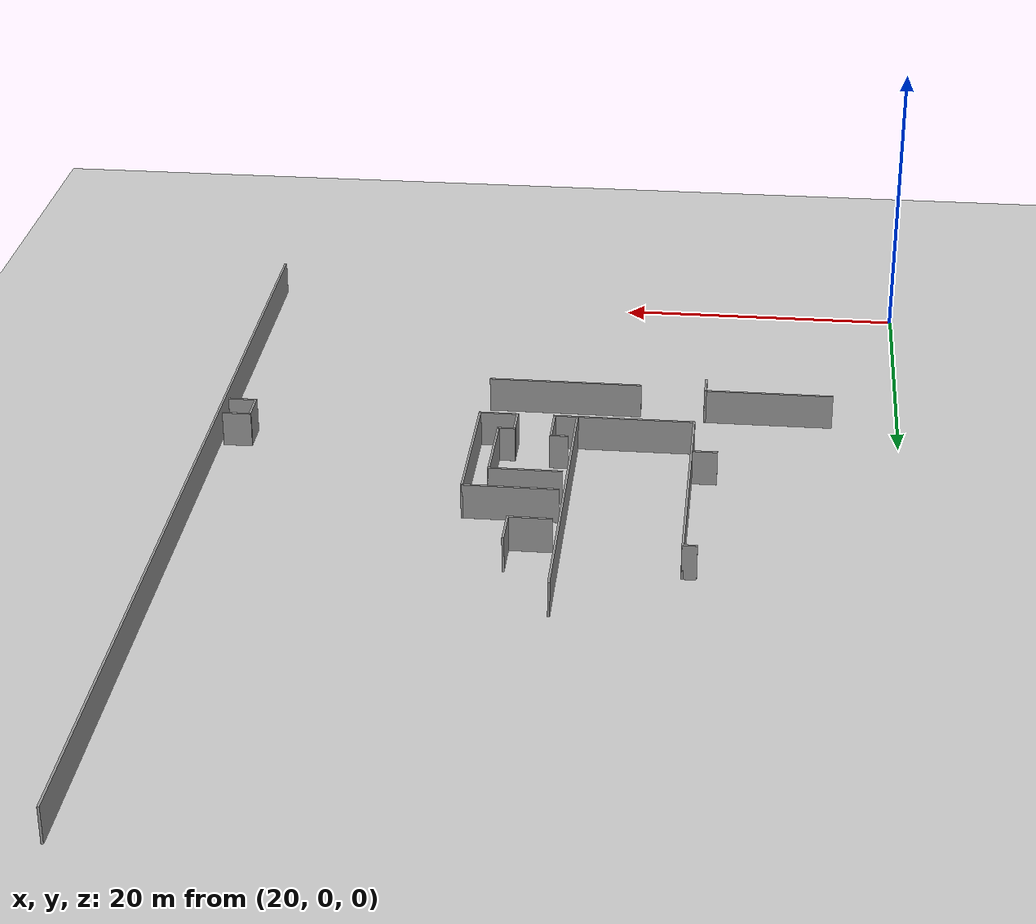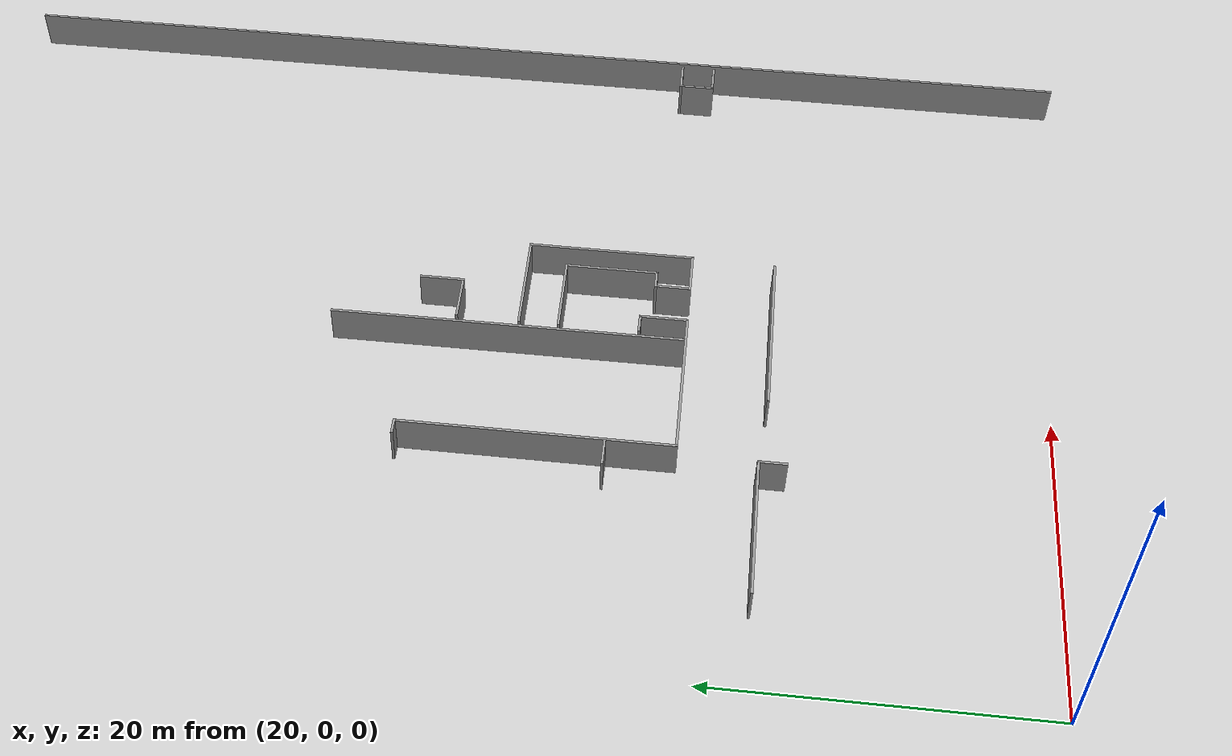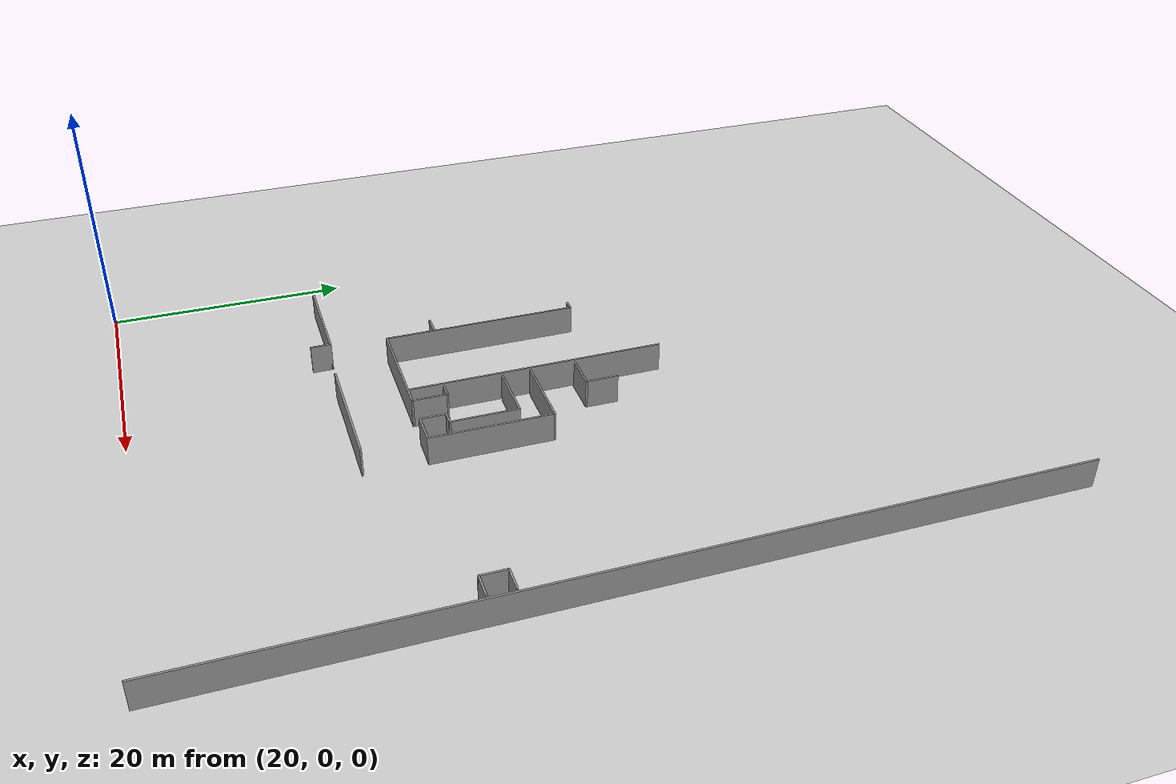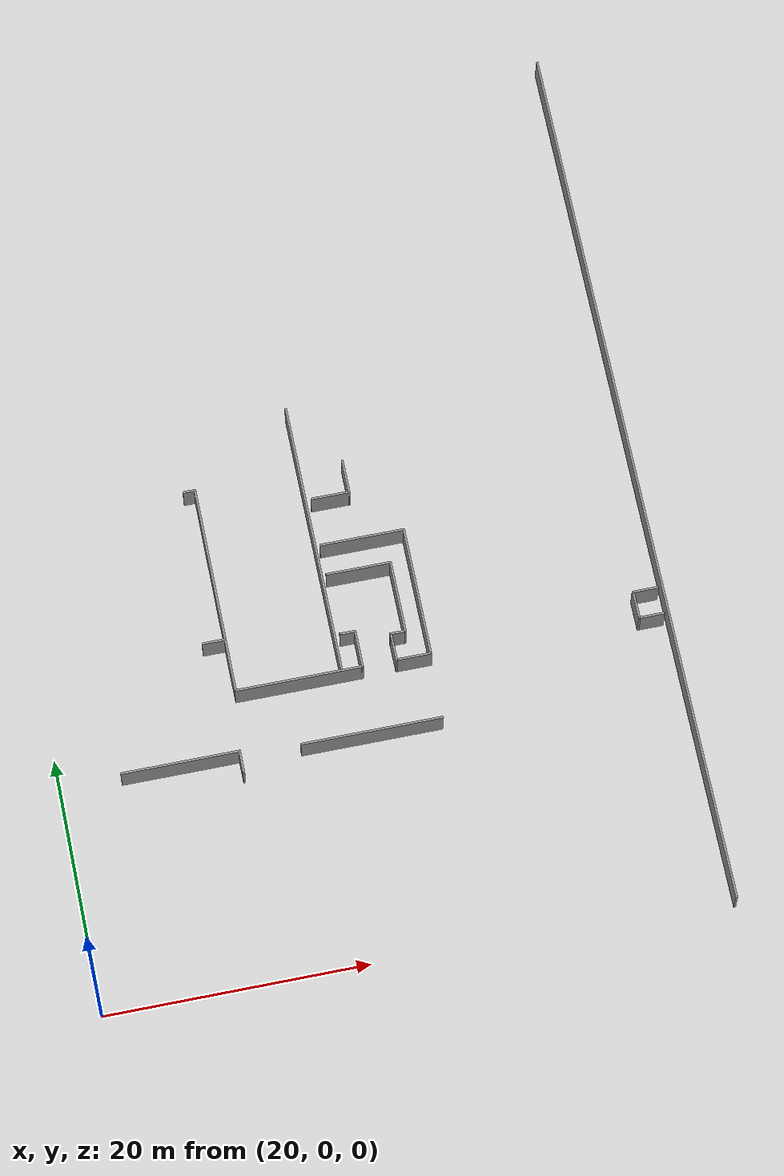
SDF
<sdf version="1.6">
 <world name="default">
  <model name="ground_plane">
   <static>1</static>
   <link name="link">
    <collision name="collision">
     <geometry><plane><normal>0 0 1</normal><size>100 100</size></plane></geometry>
     <surface><friction><ode><mu>100</mu><mu2>50</mu2></ode></friction></surface>
    </collision>
    <visual name="visual">
     <cast_shadows>0</cast_shadows>
     <geometry><plane><normal>0 0 1</normal><size>100 100</size></plane></geometry>
     <material>
      <script><uri>file://media/materials/scripts/gazebo.material</uri><name>Gazebo/Grey</name></script>
     </material>
    </visual>
   </link>
  </model>
  <model name="chengdu_office_0">
   <link name="Wall_1">
    <pose>35.425 0 0 0 -0 1.5708</pose>
    <visual name="Wall_1_Visual">
     <pose>0 0 1.25 0 -0 0</pose>
     <geometry><box><size>69.5 0.15 2.5</size></box></geometry>
     <material>
      <script><uri>file://media/materials/scripts/gazebo.material</uri><name>Gazebo/Grey</name></script>
      <ambient>1 1 1 1</ambient>
      <diffuse>0.7 0.7 0.7 1</diffuse>
      <specular>0.01 0.01 0.01 1</specular>
      <emissive>0 0 0 1</emissive>
     </material>
    </visual>
    <collision name="Wall_1_Collision">
     <pose>0 0 1.25 0 -0 0</pose>
     <geometry><box><size>69.5 0.15 2.5</size></box></geometry>
     <surface>
      <friction>
       <ode><mu>1</mu><mu2>1</mu2><fdir1>0 0 0</fdir1><slip1>0</slip1><slip2>0</slip2></ode>
       <torsional>
        <coefficient>1</coefficient>
        <patch_radius>0</patch_radius>
        <surface_radius>0</surface_radius>
        <use_patch_radius>1</use_patch_radius>
        <ode><slip>0</slip></ode>
       </torsional>
      </friction>
      <bounce><restitution_coefficient>0</restitution_coefficient><threshold>1e+06</threshold></bounce>
      <contact>
       <collide_without_contact>0</collide_without_contact>
       <collide_without_contact_bitmask>1</collide_without_contact_bitmask>
       <collide_bitmask>1</collide_bitmask>
       <ode>
        <soft_cfm>0</soft_cfm>
        <soft_erp>0.2</soft_erp>
        <kp>1e+13</kp>
        <kd>1</kd>
        <max_vel>0.01</max_vel>
        <min_depth>0</min_depth>
       </ode>
       <bullet>
        <split_impulse>1</split_impulse>
        <split_impulse_penetration_threshold>-0.01</split_impulse_penetration_threshold>
        <soft_cfm>0</soft_cfm>
        <soft_erp>0.2</soft_erp>
        <kp>1e+13</kp>
        <kd>1</kd>
       </bullet>
      </contact>
     </surface>
    </collision>
   </link>
   <link name="Wall_100">
    <pose>14.2089 -1.63326 0 0 -0 3.14159</pose>
    <visual name="Wall_100_Visual">
     <pose>0 0 1.25 0 -0 0</pose>
     <geometry><box><size>6.5 0.15 2.5</size></box></geometry>
     <material>
      <script><uri>file://media/materials/scripts/gazebo.material</uri><name>Gazebo/Grey</name></script>
      <ambient>1 1 1 1</ambient>
      <diffuse>0.7 0.7 0.7 1</diffuse>
      <specular>0.01 0.01 0.01 1</specular>
      <emissive>0 0 0 1</emissive>
     </material>
    </visual>
    <collision name="Wall_100_Collision">
     <pose>0 0 1.25 0 -0 0</pose>
     <geometry><box><size>6.5 0.15 2.5</size></box></geometry>
     <surface>
      <friction>
       <ode><mu>1</mu><mu2>1</mu2><fdir1>0 0 0</fdir1><slip1>0</slip1><slip2>0</slip2></ode>
       <torsional>
        <coefficient>1</coefficient>
        <patch_radius>0</patch_radius>
        <surface_radius>0</surface_radius>
        <use_patch_radius>1</use_patch_radius>
        <ode><slip>0</slip></ode>
       </torsional>
      </friction>
      <bounce><restitution_coefficient>0</restitution_coefficient><threshold>1e+06</threshold></bounce>
      <contact>
       <collide_without_contact>0</collide_without_contact>
       <collide_without_contact_bitmask>1</collide_without_contact_bitmask>
       <collide_bitmask>1</collide_bitmask>
       <ode>
        <soft_cfm>0</soft_cfm>
        <soft_erp>0.2</soft_erp>
        <kp>1e+13</kp>
        <kd>1</kd>
        <max_vel>0.01</max_vel>
        <min_depth>0</min_depth>
       </ode>
       <bullet>
        <split_impulse>1</split_impulse>
        <split_impulse_penetration_threshold>-0.01</split_impulse_penetration_threshold>
        <soft_cfm>0</soft_cfm>
        <soft_erp>0.2</soft_erp>
        <kp>1e+13</kp>
        <kd>1</kd>
       </bullet>
      </contact>
     </surface>
    </collision>
   </link>
   <link name="Wall_104">
    <pose>13.9539 3.46674 0 0 0 -1.5708</pose>
    <visual name="Wall_104_Visual">
     <pose>0 0 1.25 0 -0 0</pose>
     <geometry><box><size>2.75 0.15 2.5</size></box></geometry>
     <material>
      <script><uri>file://media/materials/scripts/gazebo.material</uri><name>Gazebo/Grey</name></script>
      <ambient>1 1 1 1</ambient>
      <diffuse>0.7 0.7 0.7 1</diffuse>
      <specular>0.01 0.01 0.01 1</specular>
      <emissive>0 0 0 1</emissive>
     </material>
    </visual>
    <collision name="Wall_104_Collision">
     <pose>0 0 1.25 0 -0 0</pose>
     <geometry><box><size>2.75 0.15 2.5</size></box></geometry>
     <surface>
      <friction>
       <ode><mu>1</mu><mu2>1</mu2><fdir1>0 0 0</fdir1><slip1>0</slip1><slip2>0</slip2></ode>
       <torsional>
        <coefficient>1</coefficient>
        <patch_radius>0</patch_radius>
        <surface_radius>0</surface_radius>
        <use_patch_radius>1</use_patch_radius>
        <ode><slip>0</slip></ode>
       </torsional>
      </friction>
      <bounce><restitution_coefficient>0</restitution_coefficient><threshold>1e+06</threshold></bounce>
      <contact>
       <collide_without_contact>0</collide_without_contact>
       <collide_without_contact_bitmask>1</collide_without_contact_bitmask>
       <collide_bitmask>1</collide_bitmask>
       <ode>
        <soft_cfm>0</soft_cfm>
        <soft_erp>0.2</soft_erp>
        <kp>1e+13</kp>
        <kd>1</kd>
        <max_vel>0.01</max_vel>
        <min_depth>0</min_depth>
       </ode>
       <bullet>
        <split_impulse>1</split_impulse>
        <split_impulse_penetration_threshold>-0.01</split_impulse_penetration_threshold>
        <soft_cfm>0</soft_cfm>
        <soft_erp>0.2</soft_erp>
        <kp>1e+13</kp>
        <kd>1</kd>
       </bullet>
      </contact>
     </surface>
    </collision>
   </link>
   <link name="Wall_105">
    <pose>12.5289 2.16674 0 0 -0 3.14159</pose>
    <visual name="Wall_105_Visual">
     <pose>0 0 1.25 0 -0 0</pose>
     <geometry><box><size>3 0.15 2.5</size></box></geometry>
     <material>
      <script><uri>file://media/materials/scripts/gazebo.material</uri><name>Gazebo/Grey</name></script>
      <ambient>1 1 1 1</ambient>
      <diffuse>0.7 0.7 0.7 1</diffuse>
      <specular>0.01 0.01 0.01 1</specular>
      <emissive>0 0 0 1</emissive>
     </material>
    </visual>
    <collision name="Wall_105_Collision">
     <pose>0 0 1.25 0 -0 0</pose>
     <geometry><box><size>3 0.15 2.5</size></box></geometry>
     <surface>
      <friction>
       <ode><mu>1</mu><mu2>1</mu2><fdir1>0 0 0</fdir1><slip1>0</slip1><slip2>0</slip2></ode>
       <torsional>
        <coefficient>1</coefficient>
        <patch_radius>0</patch_radius>
        <surface_radius>0</surface_radius>
        <use_patch_radius>1</use_patch_radius>
        <ode><slip>0</slip></ode>
       </torsional>
      </friction>
      <bounce><restitution_coefficient>0</restitution_coefficient><threshold>1e+06</threshold></bounce>
      <contact>
       <collide_without_contact>0</collide_without_contact>
       <collide_without_contact_bitmask>1</collide_without_contact_bitmask>
       <collide_bitmask>1</collide_bitmask>
       <ode>
        <soft_cfm>0</soft_cfm>
        <soft_erp>0.2</soft_erp>
        <kp>1e+13</kp>
        <kd>1</kd>
        <max_vel>0.01</max_vel>
        <min_depth>0</min_depth>
       </ode>
       <bullet>
        <split_impulse>1</split_impulse>
        <split_impulse_penetration_threshold>-0.01</split_impulse_penetration_threshold>
        <soft_cfm>0</soft_cfm>
        <soft_erp>0.2</soft_erp>
        <kp>1e+13</kp>
        <kd>1</kd>
       </bullet>
      </contact>
     </surface>
    </collision>
   </link>
   <link name="Wall_127">
    <pose>-2.42216 -16.465 0 0 -0 0</pose>
    <visual name="Wall_127_Visual">
     <pose>0 0 1.25 0 -0 0</pose>
     <geometry><box><size>9 0.15 2.5</size></box></geometry>
     <material>
      <script><uri>file://media/materials/scripts/gazebo.material</uri><name>Gazebo/Grey</name></script>
      <ambient>1 1 1 1</ambient>
      <diffuse>0.7 0.7 0.7 1</diffuse>
      <specular>0.01 0.01 0.01 1</specular>
      <emissive>0 0 0 1</emissive>
     </material>
    </visual>
    <collision name="Wall_127_Collision">
     <pose>0 0 1.25 0 -0 0</pose>
     <geometry><box><size>9 0.15 2.5</size></box></geometry>
     <surface>
      <friction>
       <ode><mu>1</mu><mu2>1</mu2><fdir1>0 0 0</fdir1><slip1>0</slip1><slip2>0</slip2></ode>
       <torsional>
        <coefficient>1</coefficient>
        <patch_radius>0</patch_radius>
        <surface_radius>0</surface_radius>
        <use_patch_radius>1</use_patch_radius>
        <ode><slip>0</slip></ode>
       </torsional>
      </friction>
      <bounce><restitution_coefficient>0</restitution_coefficient><threshold>1e+06</threshold></bounce>
      <contact>
       <collide_without_contact>0</collide_without_contact>
       <collide_without_contact_bitmask>1</collide_without_contact_bitmask>
       <collide_bitmask>1</collide_bitmask>
       <ode>
        <soft_cfm>0</soft_cfm>
        <soft_erp>0.2</soft_erp>
        <kp>1e+13</kp>
        <kd>1</kd>
        <max_vel>0.01</max_vel>
        <min_depth>0</min_depth>
       </ode>
       <bullet>
        <split_impulse>1</split_impulse>
        <split_impulse_penetration_threshold>-0.01</split_impulse_penetration_threshold>
        <soft_cfm>0</soft_cfm>
        <soft_erp>0.2</soft_erp>
        <kp>1e+13</kp>
        <kd>1</kd>
       </bullet>
      </contact>
     </surface>
    </collision>
   </link>
   <link name="Wall_128">
    <pose>2.00284 -17.265 0 0 0 -1.5708</pose>
    <visual name="Wall_128_Visual">
     <pose>0 0 1.25 0 -0 0</pose>
     <geometry><box><size>1.75 0.15 2.5</size></box></geometry>
     <material>
      <script><uri>file://media/materials/scripts/gazebo.material</uri><name>Gazebo/Grey</name></script>
      <ambient>1 1 1 1</ambient>
      <diffuse>0.7 0.7 0.7 1</diffuse>
      <specular>0.01 0.01 0.01 1</specular>
      <emissive>0 0 0 1</emissive>
     </material>
    </visual>
    <collision name="Wall_128_Collision">
     <pose>0 0 1.25 0 -0 0</pose>
     <geometry><box><size>1.75 0.15 2.5</size></box></geometry>
     <surface>
      <friction>
       <ode><mu>1</mu><mu2>1</mu2><fdir1>0 0 0</fdir1><slip1>0</slip1><slip2>0</slip2></ode>
       <torsional>
        <coefficient>1</coefficient>
        <patch_radius>0</patch_radius>
        <surface_radius>0</surface_radius>
        <use_patch_radius>1</use_patch_radius>
        <ode><slip>0</slip></ode>
       </torsional>
      </friction>
      <bounce><restitution_coefficient>0</restitution_coefficient><threshold>1e+06</threshold></bounce>
      <contact>
       <collide_without_contact>0</collide_without_contact>
       <collide_without_contact_bitmask>1</collide_without_contact_bitmask>
       <collide_bitmask>1</collide_bitmask>
       <ode>
        <soft_cfm>0</soft_cfm>
        <soft_erp>0.2</soft_erp>
        <kp>1e+13</kp>
        <kd>1</kd>
        <max_vel>0.01</max_vel>
        <min_depth>0</min_depth>
       </ode>
       <bullet>
        <split_impulse>1</split_impulse>
        <split_impulse_penetration_threshold>-0.01</split_impulse_penetration_threshold>
        <soft_cfm>0</soft_cfm>
        <soft_erp>0.2</soft_erp>
        <kp>1e+13</kp>
        <kd>1</kd>
       </bullet>
      </contact>
     </surface>
    </collision>
   </link>
   <link name="Wall_136">
    <pose>11.902 -16.8434 0 0 -0 0</pose>
    <visual name="Wall_136_Visual">
     <pose>0 0 1.25 0 -0 0</pose>
     <geometry><box><size>10.75 0.15 2.5</size></box></geometry>
     <material>
      <script><uri>file://media/materials/scripts/gazebo.material</uri><name>Gazebo/Grey</name></script>
      <ambient>1 1 1 1</ambient>
      <diffuse>0.7 0.7 0.7 1</diffuse>
      <specular>0.01 0.01 0.01 1</specular>
      <emissive>0 0 0 1</emissive>
     </material>
    </visual>
    <collision name="Wall_136_Collision">
     <pose>0 0 1.25 0 -0 0</pose>
     <geometry><box><size>10.75 0.15 2.5</size></box></geometry>
     <surface>
      <friction>
       <ode><mu>1</mu><mu2>1</mu2><fdir1>0 0 0</fdir1><slip1>0</slip1><slip2>0</slip2></ode>
       <torsional>
        <coefficient>1</coefficient>
        <patch_radius>0</patch_radius>
        <surface_radius>0</surface_radius>
        <use_patch_radius>1</use_patch_radius>
        <ode><slip>0</slip></ode>
       </torsional>
      </friction>
      <bounce><restitution_coefficient>0</restitution_coefficient><threshold>1e+06</threshold></bounce>
      <contact>
       <collide_without_contact>0</collide_without_contact>
       <collide_without_contact_bitmask>1</collide_without_contact_bitmask>
       <collide_bitmask>1</collide_bitmask>
       <ode>
        <soft_cfm>0</soft_cfm>
        <soft_erp>0.2</soft_erp>
        <kp>1e+13</kp>
        <kd>1</kd>
        <max_vel>0.01</max_vel>
        <min_depth>0</min_depth>
       </ode>
       <bullet>
        <split_impulse>1</split_impulse>
        <split_impulse_penetration_threshold>-0.01</split_impulse_penetration_threshold>
        <soft_cfm>0</soft_cfm>
        <soft_erp>0.2</soft_erp>
        <kp>1e+13</kp>
        <kd>1</kd>
       </bullet>
      </contact>
     </surface>
    </collision>
   </link>
   <link name="Wall_138">
    <pose>34.1169 -9.96068 0 0 -0 3.14159</pose>
    <visual name="Wall_138_Visual">
     <pose>0 0 1.25 0 -0 0</pose>
     <geometry><box><size>2 0.15 2.5</size></box></geometry>
     <material>
      <script><uri>file://media/materials/scripts/gazebo.material</uri><name>Gazebo/Grey</name></script>
      <ambient>1 1 1 1</ambient>
      <diffuse>0.7 0.7 0.7 1</diffuse>
      <specular>0.01 0.01 0.01 1</specular>
      <emissive>0 0 0 1</emissive>
     </material>
    </visual>
    <collision name="Wall_138_Collision">
     <pose>0 0 1.25 0 -0 0</pose>
     <geometry><box><size>2 0.15 2.5</size></box></geometry>
     <surface>
      <friction>
       <ode><mu>1</mu><mu2>1</mu2><fdir1>0 0 0</fdir1><slip1>0</slip1><slip2>0</slip2></ode>
       <torsional>
        <coefficient>1</coefficient>
        <patch_radius>0</patch_radius>
        <surface_radius>0</surface_radius>
        <use_patch_radius>1</use_patch_radius>
        <ode><slip>0</slip></ode>
       </torsional>
      </friction>
      <bounce><restitution_coefficient>0</restitution_coefficient><threshold>1e+06</threshold></bounce>
      <contact>
       <collide_without_contact>0</collide_without_contact>
       <collide_without_contact_bitmask>1</collide_without_contact_bitmask>
       <collide_bitmask>1</collide_bitmask>
       <ode>
        <soft_cfm>0</soft_cfm>
        <soft_erp>0.2</soft_erp>
        <kp>1e+13</kp>
        <kd>1</kd>
        <max_vel>0.01</max_vel>
        <min_depth>0</min_depth>
       </ode>
       <bullet>
        <split_impulse>1</split_impulse>
        <split_impulse_penetration_threshold>-0.01</split_impulse_penetration_threshold>
        <soft_cfm>0</soft_cfm>
        <soft_erp>0.2</soft_erp>
        <kp>1e+13</kp>
        <kd>1</kd>
       </bullet>
      </contact>
     </surface>
    </collision>
   </link>
   <link name="Wall_139">
    <pose>33.1919 -11.0107 0 0 0 -1.5708</pose>
    <visual name="Wall_139_Visual">
     <pose>0 0 1.25 0 -0 0</pose>
     <geometry><box><size>2.25 0.15 2.5</size></box></geometry>
     <material>
      <script><uri>file://media/materials/scripts/gazebo.material</uri><name>Gazebo/Grey</name></script>
      <ambient>1 1 1 1</ambient>
      <diffuse>0.7 0.7 0.7 1</diffuse>
      <specular>0.01 0.01 0.01 1</specular>
      <emissive>0 0 0 1</emissive>
     </material>
    </visual>
    <collision name="Wall_139_Collision">
     <pose>0 0 1.25 0 -0 0</pose>
     <geometry><box><size>2.25 0.15 2.5</size></box></geometry>
     <surface>
      <friction>
       <ode><mu>1</mu><mu2>1</mu2><fdir1>0 0 0</fdir1><slip1>0</slip1><slip2>0</slip2></ode>
       <torsional>
        <coefficient>1</coefficient>
        <patch_radius>0</patch_radius>
        <surface_radius>0</surface_radius>
        <use_patch_radius>1</use_patch_radius>
        <ode><slip>0</slip></ode>
       </torsional>
      </friction>
      <bounce><restitution_coefficient>0</restitution_coefficient><threshold>1e+06</threshold></bounce>
      <contact>
       <collide_without_contact>0</collide_without_contact>
       <collide_without_contact_bitmask>1</collide_without_contact_bitmask>
       <collide_bitmask>1</collide_bitmask>
       <ode>
        <soft_cfm>0</soft_cfm>
        <soft_erp>0.2</soft_erp>
        <kp>1e+13</kp>
        <kd>1</kd>
        <max_vel>0.01</max_vel>
        <min_depth>0</min_depth>
       </ode>
       <bullet>
        <split_impulse>1</split_impulse>
        <split_impulse_penetration_threshold>-0.01</split_impulse_penetration_threshold>
        <soft_cfm>0</soft_cfm>
        <soft_erp>0.2</soft_erp>
        <kp>1e+13</kp>
        <kd>1</kd>
       </bullet>
      </contact>
     </surface>
    </collision>
   </link>
   <link name="Wall_140">
    <pose>34.1169 -12.0607 0 0 -0 0</pose>
    <visual name="Wall_140_Visual">
     <pose>0 0 1.25 0 -0 0</pose>
     <geometry><box><size>2 0.15 2.5</size></box></geometry>
     <material>
      <script><uri>file://media/materials/scripts/gazebo.material</uri><name>Gazebo/Grey</name></script>
      <ambient>1 1 1 1</ambient>
      <diffuse>0.7 0.7 0.7 1</diffuse>
      <specular>0.01 0.01 0.01 1</specular>
      <emissive>0 0 0 1</emissive>
     </material>
    </visual>
    <collision name="Wall_140_Collision">
     <pose>0 0 1.25 0 -0 0</pose>
     <geometry><box><size>2 0.15 2.5</size></box></geometry>
     <surface>
      <friction>
       <ode><mu>1</mu><mu2>1</mu2><fdir1>0 0 0</fdir1><slip1>0</slip1><slip2>0</slip2></ode>
       <torsional>
        <coefficient>1</coefficient>
        <patch_radius>0</patch_radius>
        <surface_radius>0</surface_radius>
        <use_patch_radius>1</use_patch_radius>
        <ode><slip>0</slip></ode>
       </torsional>
      </friction>
      <bounce><restitution_coefficient>0</restitution_coefficient><threshold>1e+06</threshold></bounce>
      <contact>
       <collide_without_contact>0</collide_without_contact>
       <collide_without_contact_bitmask>1</collide_without_contact_bitmask>
       <collide_bitmask>1</collide_bitmask>
       <ode>
        <soft_cfm>0</soft_cfm>
        <soft_erp>0.2</soft_erp>
        <kp>1e+13</kp>
        <kd>1</kd>
        <max_vel>0.01</max_vel>
        <min_depth>0</min_depth>
       </ode>
       <bullet>
        <split_impulse>1</split_impulse>
        <split_impulse_penetration_threshold>-0.01</split_impulse_penetration_threshold>
        <soft_cfm>0</soft_cfm>
        <soft_erp>0.2</soft_erp>
        <kp>1e+13</kp>
        <kd>1</kd>
       </bullet>
      </contact>
     </surface>
    </collision>
   </link>
   <link name="Wall_83">
    <pose>10.6081 -0.948284 0 0 0 -1.56796</pose>
    <visual name="Wall_83_Visual">
     <pose>0 0 1.25 0 -0 0</pose>
     <geometry><box><size>21.5 0.15 2.5</size></box></geometry>
     <material>
      <script><uri>file://media/materials/scripts/gazebo.material</uri><name>Gazebo/Grey</name></script>
      <ambient>1 1 1 1</ambient>
      <diffuse>0.7 0.7 0.7 1</diffuse>
      <specular>0.01 0.01 0.01 1</specular>
      <emissive>0 0 0 1</emissive>
     </material>
    </visual>
    <collision name="Wall_83_Collision">
     <pose>0 0 1.25 0 -0 0</pose>
     <geometry><box><size>21.5 0.15 2.5</size></box></geometry>
     <surface>
      <friction>
       <ode><mu>1</mu><mu2>1</mu2><fdir1>0 0 0</fdir1><slip1>0</slip1><slip2>0</slip2></ode>
       <torsional>
        <coefficient>1</coefficient>
        <patch_radius>0</patch_radius>
        <surface_radius>0</surface_radius>
        <use_patch_radius>1</use_patch_radius>
        <ode><slip>0</slip></ode>
       </torsional>
      </friction>
      <bounce><restitution_coefficient>0</restitution_coefficient><threshold>1e+06</threshold></bounce>
      <contact>
       <collide_without_contact>0</collide_without_contact>
       <collide_without_contact_bitmask>1</collide_without_contact_bitmask>
       <collide_bitmask>1</collide_bitmask>
       <ode>
        <soft_cfm>0</soft_cfm>
        <soft_erp>0.2</soft_erp>
        <kp>1e+13</kp>
        <kd>1</kd>
        <max_vel>0.01</max_vel>
        <min_depth>0</min_depth>
       </ode>
       <bullet>
        <split_impulse>1</split_impulse>
        <split_impulse_penetration_threshold>-0.01</split_impulse_penetration_threshold>
        <soft_cfm>0</soft_cfm>
        <soft_erp>0.2</soft_erp>
        <kp>1e+13</kp>
        <kd>1</kd>
       </bullet>
      </contact>
     </surface>
    </collision>
   </link>
   <link name="Wall_86">
    <pose>2.17893 4.59674 0 0 -0 0</pose>
    <visual name="Wall_86_Visual">
     <pose>0 0 1.25 0 -0 0</pose>
     <geometry><box><size>1 0.15 2.5</size></box></geometry>
     <material>
      <script><uri>file://media/materials/scripts/gazebo.material</uri><name>Gazebo/Grey</name></script>
      <ambient>1 1 1 1</ambient>
      <diffuse>0.7 0.7 0.7 1</diffuse>
      <specular>0.01 0.01 0.01 1</specular>
      <emissive>0 0 0 1</emissive>
     </material>
    </visual>
    <collision name="Wall_86_Collision">
     <pose>0 0 1.25 0 -0 0</pose>
     <geometry><box><size>1 0.15 2.5</size></box></geometry>
     <surface>
      <friction>
       <ode><mu>1</mu><mu2>1</mu2><fdir1>0 0 0</fdir1><slip1>0</slip1><slip2>0</slip2></ode>
       <torsional>
        <coefficient>1</coefficient>
        <patch_radius>0</patch_radius>
        <surface_radius>0</surface_radius>
        <use_patch_radius>1</use_patch_radius>
        <ode><slip>0</slip></ode>
       </torsional>
      </friction>
      <bounce><restitution_coefficient>0</restitution_coefficient><threshold>1e+06</threshold></bounce>
      <contact>
       <collide_without_contact>0</collide_without_contact>
       <collide_without_contact_bitmask>1</collide_without_contact_bitmask>
       <collide_bitmask>1</collide_bitmask>
       <ode>
        <soft_cfm>0</soft_cfm>
        <soft_erp>0.2</soft_erp>
        <kp>1e+13</kp>
        <kd>1</kd>
        <max_vel>0.01</max_vel>
        <min_depth>0</min_depth>
       </ode>
       <bullet>
        <split_impulse>1</split_impulse>
        <split_impulse_penetration_threshold>-0.01</split_impulse_penetration_threshold>
        <soft_cfm>0</soft_cfm>
        <soft_erp>0.2</soft_erp>
        <kp>1e+13</kp>
        <kd>1</kd>
       </bullet>
      </contact>
     </surface>
    </collision>
   </link>
   <link name="Wall_87">
    <pose>2.60393 -3.57826 0 0 0 -1.5708</pose>
    <visual name="Wall_87_Visual">
     <pose>0 0 1.25 0 -0 0</pose>
     <geometry><box><size>16.5 0.15 2.5</size></box></geometry>
     <material>
      <script><uri>file://media/materials/scripts/gazebo.material</uri><name>Gazebo/Grey</name></script>
      <ambient>1 1 1 1</ambient>
      <diffuse>0.7 0.7 0.7 1</diffuse>
      <specular>0.01 0.01 0.01 1</specular>
      <emissive>0 0 0 1</emissive>
     </material>
    </visual>
    <collision name="Wall_87_Collision">
     <pose>0 0 1.25 0 -0 0</pose>
     <geometry><box><size>16.5 0.15 2.5</size></box></geometry>
     <surface>
      <friction>
       <ode><mu>1</mu><mu2>1</mu2><fdir1>0 0 0</fdir1><slip1>0</slip1><slip2>0</slip2></ode>
       <torsional>
        <coefficient>1</coefficient>
        <patch_radius>0</patch_radius>
        <surface_radius>0</surface_radius>
        <use_patch_radius>1</use_patch_radius>
        <ode><slip>0</slip></ode>
       </torsional>
      </friction>
      <bounce><restitution_coefficient>0</restitution_coefficient><threshold>1e+06</threshold></bounce>
      <contact>
       <collide_without_contact>0</collide_without_contact>
       <collide_without_contact_bitmask>1</collide_without_contact_bitmask>
       <collide_bitmask>1</collide_bitmask>
       <ode>
        <soft_cfm>0</soft_cfm>
        <soft_erp>0.2</soft_erp>
        <kp>1e+13</kp>
        <kd>1</kd>
        <max_vel>0.01</max_vel>
        <min_depth>0</min_depth>
       </ode>
       <bullet>
        <split_impulse>1</split_impulse>
        <split_impulse_penetration_threshold>-0.01</split_impulse_penetration_threshold>
        <soft_cfm>0</soft_cfm>
        <soft_erp>0.2</soft_erp>
        <kp>1e+13</kp>
        <kd>1</kd>
       </bullet>
      </contact>
     </surface>
    </collision>
   </link>
   <link name="Wall_88">
    <pose>7.40393 -11.7533 0 0 -0 0</pose>
    <visual name="Wall_88_Visual">
     <pose>0 0 1.25 0 -0 0</pose>
     <geometry><box><size>9.75 0.15 2.5</size></box></geometry>
     <material>
      <script><uri>file://media/materials/scripts/gazebo.material</uri><name>Gazebo/Grey</name></script>
      <ambient>1 1 1 1</ambient>
      <diffuse>0.7 0.7 0.7 1</diffuse>
      <specular>0.01 0.01 0.01 1</specular>
      <emissive>0 0 0 1</emissive>
     </material>
    </visual>
    <collision name="Wall_88_Collision">
     <pose>0 0 1.25 0 -0 0</pose>
     <geometry><box><size>9.75 0.15 2.5</size></box></geometry>
     <surface>
      <friction>
       <ode><mu>1</mu><mu2>1</mu2><fdir1>0 0 0</fdir1><slip1>0</slip1><slip2>0</slip2></ode>
       <torsional>
        <coefficient>1</coefficient>
        <patch_radius>0</patch_radius>
        <surface_radius>0</surface_radius>
        <use_patch_radius>1</use_patch_radius>
        <ode><slip>0</slip></ode>
       </torsional>
      </friction>
      <bounce><restitution_coefficient>0</restitution_coefficient><threshold>1e+06</threshold></bounce>
      <contact>
       <collide_without_contact>0</collide_without_contact>
       <collide_without_contact_bitmask>1</collide_without_contact_bitmask>
       <collide_bitmask>1</collide_bitmask>
       <ode>
        <soft_cfm>0</soft_cfm>
        <soft_erp>0.2</soft_erp>
        <kp>1e+13</kp>
        <kd>1</kd>
        <max_vel>0.01</max_vel>
        <min_depth>0</min_depth>
       </ode>
       <bullet>
        <split_impulse>1</split_impulse>
        <split_impulse_penetration_threshold>-0.01</split_impulse_penetration_threshold>
        <soft_cfm>0</soft_cfm>
        <soft_erp>0.2</soft_erp>
        <kp>1e+13</kp>
        <kd>1</kd>
       </bullet>
      </contact>
     </surface>
    </collision>
   </link>
   <link name="Wall_89">
    <pose>12.2039 -10.3283 0 0 -0 1.5708</pose>
    <visual name="Wall_89_Visual">
     <pose>0 0 1.25 0 -0 0</pose>
     <geometry><box><size>3 0.15 2.5</size></box></geometry>
     <material>
      <script><uri>file://media/materials/scripts/gazebo.material</uri><name>Gazebo/Grey</name></script>
      <ambient>1 1 1 1</ambient>
      <diffuse>0.7 0.7 0.7 1</diffuse>
      <specular>0.01 0.01 0.01 1</specular>
      <emissive>0 0 0 1</emissive>
     </material>
    </visual>
    <collision name="Wall_89_Collision">
     <pose>0 0 1.25 0 -0 0</pose>
     <geometry><box><size>3 0.15 2.5</size></box></geometry>
     <surface>
      <friction>
       <ode><mu>1</mu><mu2>1</mu2><fdir1>0 0 0</fdir1><slip1>0</slip1><slip2>0</slip2></ode>
       <torsional>
        <coefficient>1</coefficient>
        <patch_radius>0</patch_radius>
        <surface_radius>0</surface_radius>
        <use_patch_radius>1</use_patch_radius>
        <ode><slip>0</slip></ode>
       </torsional>
      </friction>
      <bounce><restitution_coefficient>0</restitution_coefficient><threshold>1e+06</threshold></bounce>
      <contact>
       <collide_without_contact>0</collide_without_contact>
       <collide_without_contact_bitmask>1</collide_without_contact_bitmask>
       <collide_bitmask>1</collide_bitmask>
       <ode>
        <soft_cfm>0</soft_cfm>
        <soft_erp>0.2</soft_erp>
        <kp>1e+13</kp>
        <kd>1</kd>
        <max_vel>0.01</max_vel>
        <min_depth>0</min_depth>
       </ode>
       <bullet>
        <split_impulse>1</split_impulse>
        <split_impulse_penetration_threshold>-0.01</split_impulse_penetration_threshold>
        <soft_cfm>0</soft_cfm>
        <soft_erp>0.2</soft_erp>
        <kp>1e+13</kp>
        <kd>1</kd>
       </bullet>
      </contact>
     </surface>
    </collision>
   </link>
   <link name="Wall_90">
    <pose>11.6539 -8.90326 0 0 -0 3.14159</pose>
    <visual name="Wall_90_Visual">
     <pose>0 0 1.25 0 -0 0</pose>
     <geometry><box><size>1.25 0.15 2.5</size></box></geometry>
     <material>
      <script><uri>file://media/materials/scripts/gazebo.material</uri><name>Gazebo/Grey</name></script>
      <ambient>1 1 1 1</ambient>
      <diffuse>0.7 0.7 0.7 1</diffuse>
      <specular>0.01 0.01 0.01 1</specular>
      <emissive>0 0 0 1</emissive>
     </material>
    </visual>
    <collision name="Wall_90_Collision">
     <pose>0 0 1.25 0 -0 0</pose>
     <geometry><box><size>1.25 0.15 2.5</size></box></geometry>
     <surface>
      <friction>
       <ode><mu>1</mu><mu2>1</mu2><fdir1>0 0 0</fdir1><slip1>0</slip1><slip2>0</slip2></ode>
       <torsional>
        <coefficient>1</coefficient>
        <patch_radius>0</patch_radius>
        <surface_radius>0</surface_radius>
        <use_patch_radius>1</use_patch_radius>
        <ode><slip>0</slip></ode>
       </torsional>
      </friction>
      <bounce><restitution_coefficient>0</restitution_coefficient><threshold>1e+06</threshold></bounce>
      <contact>
       <collide_without_contact>0</collide_without_contact>
       <collide_without_contact_bitmask>1</collide_without_contact_bitmask>
       <collide_bitmask>1</collide_bitmask>
       <ode>
        <soft_cfm>0</soft_cfm>
        <soft_erp>0.2</soft_erp>
        <kp>1e+13</kp>
        <kd>1</kd>
        <max_vel>0.01</max_vel>
        <min_depth>0</min_depth>
       </ode>
       <bullet>
        <split_impulse>1</split_impulse>
        <split_impulse_penetration_threshold>-0.01</split_impulse_penetration_threshold>
        <soft_cfm>0</soft_cfm>
        <soft_erp>0.2</soft_erp>
        <kp>1e+13</kp>
        <kd>1</kd>
       </bullet>
      </contact>
     </surface>
    </collision>
   </link>
   <link name="Wall_92">
    <pose>1.71393 -7.63326 0 0 -0 0</pose>
    <visual name="Wall_92_Visual">
     <pose>0 0 1.25 0 -0 0</pose>
     <geometry><box><size>1.75 0.15 2.5</size></box></geometry>
     <material>
      <script><uri>file://media/materials/scripts/gazebo.material</uri><name>Gazebo/Grey</name></script>
      <ambient>1 1 1 1</ambient>
      <diffuse>0.7 0.7 0.7 1</diffuse>
      <specular>0.01 0.01 0.01 1</specular>
      <emissive>0 0 0 1</emissive>
     </material>
    </visual>
    <collision name="Wall_92_Collision">
     <pose>0 0 1.25 0 -0 0</pose>
     <geometry><box><size>1.75 0.15 2.5</size></box></geometry>
     <surface>
      <friction>
       <ode><mu>1</mu><mu2>1</mu2><fdir1>0 0 0</fdir1><slip1>0</slip1><slip2>0</slip2></ode>
       <torsional>
        <coefficient>1</coefficient>
        <patch_radius>0</patch_radius>
        <surface_radius>0</surface_radius>
        <use_patch_radius>1</use_patch_radius>
        <ode><slip>0</slip></ode>
       </torsional>
      </friction>
      <bounce><restitution_coefficient>0</restitution_coefficient><threshold>1e+06</threshold></bounce>
      <contact>
       <collide_without_contact>0</collide_without_contact>
       <collide_without_contact_bitmask>1</collide_without_contact_bitmask>
       <collide_bitmask>1</collide_bitmask>
       <ode>
        <soft_cfm>0</soft_cfm>
        <soft_erp>0.2</soft_erp>
        <kp>1e+13</kp>
        <kd>1</kd>
        <max_vel>0.01</max_vel>
        <min_depth>0</min_depth>
       </ode>
       <bullet>
        <split_impulse>1</split_impulse>
        <split_impulse_penetration_threshold>-0.01</split_impulse_penetration_threshold>
        <soft_cfm>0</soft_cfm>
        <soft_erp>0.2</soft_erp>
        <kp>1e+13</kp>
        <kd>1</kd>
       </bullet>
      </contact>
     </surface>
    </collision>
   </link>
   <link name="Wall_94">
    <pose>13.4589 -4.03326 0 0 -0 0</pose>
    <visual name="Wall_94_Visual">
     <pose>0 0 1.25 0 -0 0</pose>
     <geometry><box><size>5 0.15 2.5</size></box></geometry>
     <material>
      <script><uri>file://media/materials/scripts/gazebo.material</uri><name>Gazebo/Grey</name></script>
      <ambient>1 1 1 1</ambient>
      <diffuse>0.7 0.7 0.7 1</diffuse>
      <specular>0.01 0.01 0.01 1</specular>
      <emissive>0 0 0 1</emissive>
     </material>
    </visual>
    <collision name="Wall_94_Collision">
     <pose>0 0 1.25 0 -0 0</pose>
     <geometry><box><size>5 0.15 2.5</size></box></geometry>
     <surface>
      <friction>
       <ode><mu>1</mu><mu2>1</mu2><fdir1>0 0 0</fdir1><slip1>0</slip1><slip2>0</slip2></ode>
       <torsional>
        <coefficient>1</coefficient>
        <patch_radius>0</patch_radius>
        <surface_radius>0</surface_radius>
        <use_patch_radius>1</use_patch_radius>
        <ode><slip>0</slip></ode>
       </torsional>
      </friction>
      <bounce><restitution_coefficient>0</restitution_coefficient><threshold>1e+06</threshold></bounce>
      <contact>
       <collide_without_contact>0</collide_without_contact>
       <collide_without_contact_bitmask>1</collide_without_contact_bitmask>
       <collide_bitmask>1</collide_bitmask>
       <ode>
        <soft_cfm>0</soft_cfm>
        <soft_erp>0.2</soft_erp>
        <kp>1e+13</kp>
        <kd>1</kd>
        <max_vel>0.01</max_vel>
        <min_depth>0</min_depth>
       </ode>
       <bullet>
        <split_impulse>1</split_impulse>
        <split_impulse_penetration_threshold>-0.01</split_impulse_penetration_threshold>
        <soft_cfm>0</soft_cfm>
        <soft_erp>0.2</soft_erp>
        <kp>1e+13</kp>
        <kd>1</kd>
       </bullet>
      </contact>
     </surface>
    </collision>
   </link>
   <link name="Wall_95">
    <pose>15.8839 -6.83326 0 0 0 -1.5708</pose>
    <visual name="Wall_95_Visual">
     <pose>0 0 1.25 0 -0 0</pose>
     <geometry><box><size>5.75 0.15 2.5</size></box></geometry>
     <material>
      <script><uri>file://media/materials/scripts/gazebo.material</uri><name>Gazebo/Grey</name></script>
      <ambient>1 1 1 1</ambient>
      <diffuse>0.7 0.7 0.7 1</diffuse>
      <specular>0.01 0.01 0.01 1</specular>
      <emissive>0 0 0 1</emissive>
     </material>
    </visual>
    <collision name="Wall_95_Collision">
     <pose>0 0 1.25 0 -0 0</pose>
     <geometry><box><size>5.75 0.15 2.5</size></box></geometry>
     <surface>
      <friction>
       <ode><mu>1</mu><mu2>1</mu2><fdir1>0 0 0</fdir1><slip1>0</slip1><slip2>0</slip2></ode>
       <torsional>
        <coefficient>1</coefficient>
        <patch_radius>0</patch_radius>
        <surface_radius>0</surface_radius>
        <use_patch_radius>1</use_patch_radius>
        <ode><slip>0</slip></ode>
       </torsional>
      </friction>
      <bounce><restitution_coefficient>0</restitution_coefficient><threshold>1e+06</threshold></bounce>
      <contact>
       <collide_without_contact>0</collide_without_contact>
       <collide_without_contact_bitmask>1</collide_without_contact_bitmask>
       <collide_bitmask>1</collide_bitmask>
       <ode>
        <soft_cfm>0</soft_cfm>
        <soft_erp>0.2</soft_erp>
        <kp>1e+13</kp>
        <kd>1</kd>
        <max_vel>0.01</max_vel>
        <min_depth>0</min_depth>
       </ode>
       <bullet>
        <split_impulse>1</split_impulse>
        <split_impulse_penetration_threshold>-0.01</split_impulse_penetration_threshold>
        <soft_cfm>0</soft_cfm>
        <soft_erp>0.2</soft_erp>
        <kp>1e+13</kp>
        <kd>1</kd>
       </bullet>
      </contact>
     </surface>
    </collision>
   </link>
   <link name="Wall_96">
    <pose>15.3339 -9.63326 0 0 -0 3.14159</pose>
    <visual name="Wall_96_Visual">
     <pose>0 0 1.25 0 -0 0</pose>
     <geometry><box><size>1.25 0.15 2.5</size></box></geometry>
     <material>
      <script><uri>file://media/materials/scripts/gazebo.material</uri><name>Gazebo/Grey</name></script>
      <ambient>1 1 1 1</ambient>
      <diffuse>0.7 0.7 0.7 1</diffuse>
      <specular>0.01 0.01 0.01 1</specular>
      <emissive>0 0 0 1</emissive>
     </material>
    </visual>
    <collision name="Wall_96_Collision">
     <pose>0 0 1.25 0 -0 0</pose>
     <geometry><box><size>1.25 0.15 2.5</size></box></geometry>
     <surface>
      <friction>
       <ode><mu>1</mu><mu2>1</mu2><fdir1>0 0 0</fdir1><slip1>0</slip1><slip2>0</slip2></ode>
       <torsional>
        <coefficient>1</coefficient>
        <patch_radius>0</patch_radius>
        <surface_radius>0</surface_radius>
        <use_patch_radius>1</use_patch_radius>
        <ode><slip>0</slip></ode>
       </torsional>
      </friction>
      <bounce><restitution_coefficient>0</restitution_coefficient><threshold>1e+06</threshold></bounce>
      <contact>
       <collide_without_contact>0</collide_without_contact>
       <collide_without_contact_bitmask>1</collide_without_contact_bitmask>
       <collide_bitmask>1</collide_bitmask>
       <ode>
        <soft_cfm>0</soft_cfm>
        <soft_erp>0.2</soft_erp>
        <kp>1e+13</kp>
        <kd>1</kd>
        <max_vel>0.01</max_vel>
        <min_depth>0</min_depth>
       </ode>
       <bullet>
        <split_impulse>1</split_impulse>
        <split_impulse_penetration_threshold>-0.01</split_impulse_penetration_threshold>
        <soft_cfm>0</soft_cfm>
        <soft_erp>0.2</soft_erp>
        <kp>1e+13</kp>
        <kd>1</kd>
       </bullet>
      </contact>
     </surface>
    </collision>
   </link>
   <link name="Wall_97">
    <pose>14.7839 -10.6833 0 0 0 -1.5708</pose>
    <visual name="Wall_97_Visual">
     <pose>0 0 1.25 0 -0 0</pose>
     <geometry><box><size>2.25 0.15 2.5</size></box></geometry>
     <material>
      <script><uri>file://media/materials/scripts/gazebo.material</uri><name>Gazebo/Grey</name></script>
      <ambient>1 1 1 1</ambient>
      <diffuse>0.7 0.7 0.7 1</diffuse>
      <specular>0.01 0.01 0.01 1</specular>
      <emissive>0 0 0 1</emissive>
     </material>
    </visual>
    <collision name="Wall_97_Collision">
     <pose>0 0 1.25 0 -0 0</pose>
     <geometry><box><size>2.25 0.15 2.5</size></box></geometry>
     <surface>
      <friction>
       <ode><mu>1</mu><mu2>1</mu2><fdir1>0 0 0</fdir1><slip1>0</slip1><slip2>0</slip2></ode>
       <torsional>
        <coefficient>1</coefficient>
        <patch_radius>0</patch_radius>
        <surface_radius>0</surface_radius>
        <use_patch_radius>1</use_patch_radius>
        <ode><slip>0</slip></ode>
       </torsional>
      </friction>
      <bounce><restitution_coefficient>0</restitution_coefficient><threshold>1e+06</threshold></bounce>
      <contact>
       <collide_without_contact>0</collide_without_contact>
       <collide_without_contact_bitmask>1</collide_without_contact_bitmask>
       <collide_bitmask>1</collide_bitmask>
       <ode>
        <soft_cfm>0</soft_cfm>
        <soft_erp>0.2</soft_erp>
        <kp>1e+13</kp>
        <kd>1</kd>
        <max_vel>0.01</max_vel>
        <min_depth>0</min_depth>
       </ode>
       <bullet>
        <split_impulse>1</split_impulse>
        <split_impulse_penetration_threshold>-0.01</split_impulse_penetration_threshold>
        <soft_cfm>0</soft_cfm>
        <soft_erp>0.2</soft_erp>
        <kp>1e+13</kp>
        <kd>1</kd>
       </bullet>
      </contact>
     </surface>
    </collision>
   </link>
   <link name="Wall_98">
    <pose>16.0839 -11.7333 0 0 -0 0</pose>
    <visual name="Wall_98_Visual">
     <pose>0 0 1.25 0 -0 0</pose>
     <geometry><box><size>2.75 0.15 2.5</size></box></geometry>
     <material>
      <script><uri>file://media/materials/scripts/gazebo.material</uri><name>Gazebo/Grey</name></script>
      <ambient>1 1 1 1</ambient>
      <diffuse>0.7 0.7 0.7 1</diffuse>
      <specular>0.01 0.01 0.01 1</specular>
      <emissive>0 0 0 1</emissive>
     </material>
    </visual>
    <collision name="Wall_98_Collision">
     <pose>0 0 1.25 0 -0 0</pose>
     <geometry><box><size>2.75 0.15 2.5</size></box></geometry>
     <surface>
      <friction>
       <ode><mu>1</mu><mu2>1</mu2><fdir1>0 0 0</fdir1><slip1>0</slip1><slip2>0</slip2></ode>
       <torsional>
        <coefficient>1</coefficient>
        <patch_radius>0</patch_radius>
        <surface_radius>0</surface_radius>
        <use_patch_radius>1</use_patch_radius>
        <ode><slip>0</slip></ode>
       </torsional>
      </friction>
      <bounce><restitution_coefficient>0</restitution_coefficient><threshold>1e+06</threshold></bounce>
      <contact>
       <collide_without_contact>0</collide_without_contact>
       <collide_without_contact_bitmask>1</collide_without_contact_bitmask>
       <collide_bitmask>1</collide_bitmask>
       <ode>
        <soft_cfm>0</soft_cfm>
        <soft_erp>0.2</soft_erp>
        <kp>1e+13</kp>
        <kd>1</kd>
        <max_vel>0.01</max_vel>
        <min_depth>0</min_depth>
       </ode>
       <bullet>
        <split_impulse>1</split_impulse>
        <split_impulse_penetration_threshold>-0.01</split_impulse_penetration_threshold>
        <soft_cfm>0</soft_cfm>
        <soft_erp>0.2</soft_erp>
        <kp>1e+13</kp>
        <kd>1</kd>
       </bullet>
      </contact>
     </surface>
    </collision>
   </link>
   <link name="Wall_99">
    <pose>17.3839 -6.68326 0 0 -0 1.5708</pose>
    <visual name="Wall_99_Visual">
     <pose>0 0 1.25 0 -0 0</pose>
     <geometry><box><size>10.25 0.15 2.5</size></box></geometry>
     <material>
      <script><uri>file://media/materials/scripts/gazebo.material</uri><name>Gazebo/Grey</name></script>
      <ambient>1 1 1 1</ambient>
      <diffuse>0.7 0.7 0.7 1</diffuse>
      <specular>0.01 0.01 0.01 1</specular>
      <emissive>0 0 0 1</emissive>
     </material>
    </visual>
    <collision name="Wall_99_Collision">
     <pose>0 0 1.25 0 -0 0</pose>
     <geometry><box><size>10.25 0.15 2.5</size></box></geometry>
     <surface>
      <friction>
       <ode><mu>1</mu><mu2>1</mu2><fdir1>0 0 0</fdir1><slip1>0</slip1><slip2>0</slip2></ode>
       <torsional>
        <coefficient>1</coefficient>
        <patch_radius>0</patch_radius>
        <surface_radius>0</surface_radius>
        <use_patch_radius>1</use_patch_radius>
        <ode><slip>0</slip></ode>
       </torsional>
      </friction>
      <bounce><restitution_coefficient>0</restitution_coefficient><threshold>1e+06</threshold></bounce>
      <contact>
       <collide_without_contact>0</collide_without_contact>
       <collide_without_contact_bitmask>1</collide_without_contact_bitmask>
       <collide_bitmask>1</collide_bitmask>
       <ode>
        <soft_cfm>0</soft_cfm>
        <soft_erp>0.2</soft_erp>
        <kp>1e+13</kp>
        <kd>1</kd>
        <max_vel>0.01</max_vel>
        <min_depth>0</min_depth>
       </ode>
       <bullet>
        <split_impulse>1</split_impulse>
        <split_impulse_penetration_threshold>-0.01</split_impulse_penetration_threshold>
        <soft_cfm>0</soft_cfm>
        <soft_erp>0.2</soft_erp>
        <kp>1e+13</kp>
        <kd>1</kd>
       </bullet>
      </contact>
     </surface>
    </collision>
   </link>
   <static>1</static>
   <pose>31.5228 33.6993 0 0 -0 0</pose>
  </model>
 </world>
</sdf>
